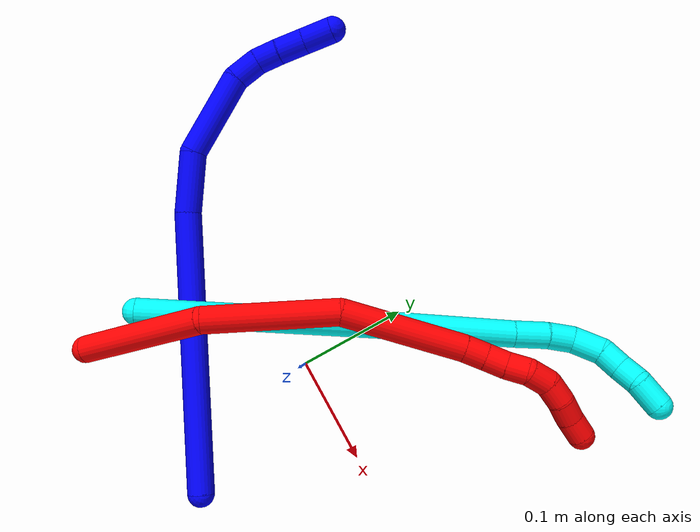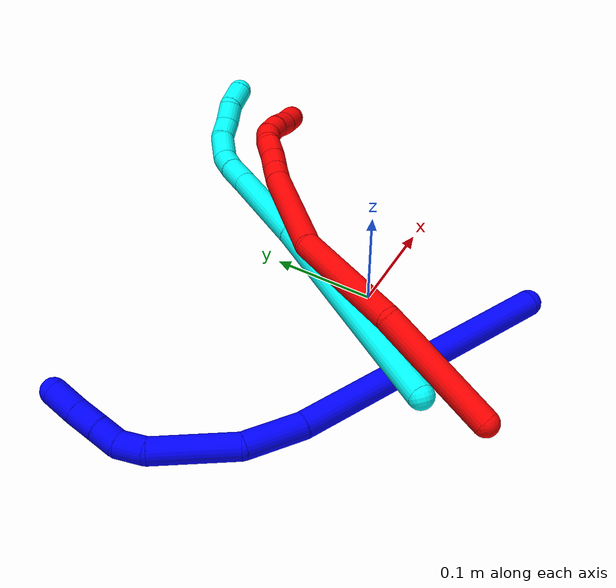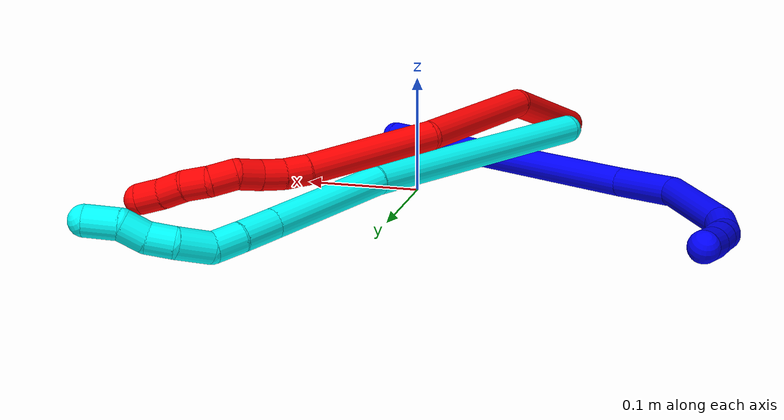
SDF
<sdf version="1.7">
 <world name="default">
  <plugin name="TubeGeneratorPlugin" filename="libtube_generator_plugin.so"/>
  <model name="photoneo_s_sensor">
   <static>1</static>
   <pose>0 0 2 1.57079 1.57079 3.14159</pose>
   <link name="link">
    <inertial><mass>0.1</mass></inertial>
    <sensor name="sensor" type="depth">
     <update_rate>30</update_rate>
     <camera>
      <horizontal_fov>1.22</horizontal_fov>
      <image><width>1920</width><height>1200</height><format>B8G8R8</format></image>
      <clip><near>0.1</near><far>4</far></clip>
      <depth_camera><output>points</output></depth_camera>
     </camera>
     <plugin name="camera_plugin" filename="libgazebo_ros_depth_camera.so">
      <baseline>0.2</baseline>
      <alwaysOn>1</alwaysOn>
      <updateRate>0.0</updateRate>
      <cameraName>camera_ir</cameraName>
      <imageTopicName>/camera/color/image_raw</imageTopicName>
      <cameraInfoTopicName>/camera/color/camera_info</cameraInfoTopicName>
      <depthImageTopicName>/camera/depth/image_raw</depthImageTopicName>
      <depthImageCameraInfoTopicName>/camera/depth/camera_info</depthImageCameraInfoTopicName>
      <pointCloudTopicName>/camera/depth/points</pointCloudTopicName>
      <frameName>fr_optical</frameName>
      <pointCloudCutoff>0.1</pointCloudCutoff>
      <pointCloudCutoffMax>2.0</pointCloudCutoffMax>
      <distortionK1>0</distortionK1>
      <distortionK2>0</distortionK2>
      <distortionK3>0</distortionK3>
      <distortionT1>0</distortionT1>
      <distortionT2>0</distortionT2>
      <CxPrime>0</CxPrime>
      <Cx>0</Cx>
      <Cy>0</Cy>
      <focalLength>0</focalLength>
      <hackBaseline>0</hackBaseline>
     </plugin>
    </sensor>
   </link>
  </model>
  <gravity>0 0 -9.8</gravity>
  <magnetic_field>6e-06 2.3e-05 -4.2e-05</magnetic_field>
  <atmosphere type="adiabatic"/>
  <physics name="default_physics" default="0" type="ode">
   <max_step_size>0.003</max_step_size>
   <real_time_factor>1</real_time_factor>
   <real_time_update_rate>1000</real_time_update_rate>
   <max_contacts>10000</max_contacts>
   <ode>
    <solver>
     <type>quick</type>
     <iters>100</iters>
     <sor>1.3</sor>
     <use_dynamic_moi_rescaling>0</use_dynamic_moi_rescaling>
    </solver>
    <constraints>
     <contact_max_correcting_vel>0</contact_max_correcting_vel>
     <contact_surface_layer>0.001</contact_surface_layer>
     <cfm>0</cfm>
     <erp>0.2</erp>
    </constraints>
   </ode>
  </physics>
  <scene><ambient>0.4 0.4 0.4 1</ambient><background>0.7 0.7 0.7 1</background><shadows>0</shadows></scene>
  <audio><device>default</device></audio>
  <spherical_coordinates>
   <surface_model>EARTH_WGS84</surface_model>
   <latitude_deg>0</latitude_deg>
   <longitude_deg>0</longitude_deg>
   <elevation>0</elevation>
   <heading_deg>0</heading_deg>
  </spherical_coordinates>
  <model name="bin">
   <static>1</static>
   <link name="bottom">
    <collision name="collision-bottom">
     <pose>0 0 -0.01 0 -0 0</pose>
     <geometry><box><size>0.8 0.6 0.02</size></box></geometry>
     <surface>
      <friction><ode><mu>100</mu><mu2>100</mu2></ode></friction>
      <contact><collide_bitmask>65535</collide_bitmask></contact>
     </surface>
    </collision>
   </link>
   <link name="west_wall">
    <collision name="collision-west_wall">
     <pose>-0.41 0 0.1 0 -0 0</pose>
     <geometry><box><size>0.02 0.6 0.2</size></box></geometry>
     <surface>
      <friction><ode><mu>100</mu><mu2>100</mu2></ode></friction>
      <contact><collide_bitmask>65535</collide_bitmask></contact>
     </surface>
    </collision>
   </link>
   <link name="east_wall">
    <collision name="collision-east_wall">
     <pose>0.41 0 0.1 0 -0 0</pose>
     <geometry><box><size>0.02 0.6 0.2</size></box></geometry>
     <surface>
      <friction><ode><mu>100</mu><mu2>100</mu2></ode></friction>
      <contact><collide_bitmask>65535</collide_bitmask></contact>
     </surface>
    </collision>
   </link>
   <link name="south_wall">
    <collision name="collision-south_wall">
     <pose>0 -0.31 0.1 0 -0 0</pose>
     <geometry><box><size>0.8 0.02 0.2</size></box></geometry>
     <surface>
      <friction><ode><mu>100</mu><mu2>100</mu2></ode></friction>
      <contact><collide_bitmask>65535</collide_bitmask></contact>
     </surface>
    </collision>
   </link>
   <link name="north_wall">
    <collision name="collision-north_wall">
     <pose>0 0.31 0.1 0 -0 0</pose>
     <geometry><box><size>0.8 0.02 0.2</size></box></geometry>
     <surface>
      <friction><ode><mu>100</mu><mu2>100</mu2></ode></friction>
      <contact><collide_bitmask>65535</collide_bitmask></contact>
     </surface>
    </collision>
   </link>
  </model>
  <model name="1">
   <static>0</static>
   <link name="1">
    <collision name="collision-cylinder-e_1_1_4">
     <pose>-0.102089 0.063908 0.048092 -0.92568 -0.90623 0.476684</pose>
     <geometry><cylinder><radius>0.0125</radius><length>0.259379</length></cylinder></geometry>
     <surface>
      <friction><ode><mu>1.16</mu><mu2>1.16</mu2><slip1>0</slip1><slip2>0</slip2></ode></friction>
      <contact><ode><kp>1e+06</kp><kd>1</kd><max_vel>0</max_vel><min_depth>0.001</min_depth></ode></contact>
     </surface>
    </collision>
    <visual name="visual-cylinder-e_1_1_4">
     <pose>-0.102089 0.063908 0.048092 -0.92568 -0.90623 0.476684</pose>
     <geometry><cylinder><radius>0.0125</radius><length>0.259379</length></cylinder></geometry>
     <material><ambient>0 0 1 1</ambient></material>
    </visual>
    <collision name="collision-cylinder-e_2_4_5">
     <pose>-0.223655 0.143493 0.109756 -0.857259 -0.754084 0.358029</pose>
     <geometry><cylinder><radius>0.0125</radius><length>0.056896</length></cylinder></geometry>
     <surface>
      <friction><ode><mu>1.16</mu><mu2>1.16</mu2><slip1>0</slip1><slip2>0</slip2></ode></friction>
      <contact><ode><kp>1e+06</kp><kd>1</kd><max_vel>0</max_vel><min_depth>0.001</min_depth></ode></contact>
     </surface>
    </collision>
    <visual name="visual-cylinder-e_2_4_5">
     <pose>-0.223655 0.143493 0.109756 -0.857259 -0.754084 0.358029</pose>
     <geometry><cylinder><radius>0.0125</radius><length>0.056896</length></cylinder></geometry>
     <material><ambient>0 0 1 1</ambient></material>
    </visual>
    <collision name="collision-cylinder-e_3_5_6">
     <pose>-0.256895 0.191339 0.142877 -1.02474 -0.350524 0.198549</pose>
     <geometry><cylinder><radius>0.0125</radius><length>0.080161</length></cylinder></geometry>
     <surface>
      <friction><ode><mu>1.16</mu><mu2>1.16</mu2><slip1>0</slip1><slip2>0</slip2></ode></friction>
      <contact><ode><kp>1e+06</kp><kd>1</kd><max_vel>0</max_vel><min_depth>0.001</min_depth></ode></contact>
     </surface>
    </collision>
    <visual name="visual-cylinder-e_3_5_6">
     <pose>-0.256895 0.191339 0.142877 -1.02474 -0.350524 0.198549</pose>
     <geometry><cylinder><radius>0.0125</radius><length>0.080161</length></cylinder></geometry>
     <material><ambient>0 0 1 1</ambient></material>
    </visual>
    <collision name="collision-cylinder-e_4_6_7">
     <pose>-0.270399 0.235191 0.168663 -1.08048 0.019515 -0.011704</pose>
     <geometry><cylinder><radius>0.0125</radius><length>0.026491</length></cylinder></geometry>
     <surface>
      <friction><ode><mu>1.16</mu><mu2>1.16</mu2><slip1>0</slip1><slip2>0</slip2></ode></friction>
      <contact><ode><kp>1e+06</kp><kd>1</kd><max_vel>0</max_vel><min_depth>0.001</min_depth></ode></contact>
     </surface>
    </collision>
    <visual name="visual-cylinder-e_4_6_7">
     <pose>-0.270399 0.235191 0.168663 -1.08048 0.019515 -0.011704</pose>
     <geometry><cylinder><radius>0.0125</radius><length>0.026491</length></cylinder></geometry>
     <material><ambient>0 0 1 1</ambient></material>
    </visual>
    <collision name="collision-cylinder-e_5_7_8">
     <pose>-0.266343 0.254842 0.1819 -0.849878 0.343824 -0.156812</pose>
     <geometry><cylinder><radius>0.0125</radius><length>0.022531</length></cylinder></geometry>
     <surface>
      <friction><ode><mu>1.16</mu><mu2>1.16</mu2><slip1>0</slip1><slip2>0</slip2></ode></friction>
      <contact><ode><kp>1e+06</kp><kd>1</kd><max_vel>0</max_vel><min_depth>0.001</min_depth></ode></contact>
     </surface>
    </collision>
    <visual name="visual-cylinder-e_5_7_8">
     <pose>-0.266343 0.254842 0.1819 -0.849878 0.343824 -0.156812</pose>
     <geometry><cylinder><radius>0.0125</radius><length>0.022531</length></cylinder></geometry>
     <material><ambient>0 0 1 1</ambient></material>
    </visual>
    <collision name="collision-cylinder-e_6_8_9">
     <pose>-0.257905 0.272498 0.196276 -0.920143 0.364105 -0.181944</pose>
     <geometry><cylinder><radius>0.0125</radius><length>0.026062</length></cylinder></geometry>
     <surface>
      <friction><ode><mu>1.16</mu><mu2>1.16</mu2><slip1>0</slip1><slip2>0</slip2></ode></friction>
      <contact><ode><kp>1e+06</kp><kd>1</kd><max_vel>0</max_vel><min_depth>0.001</min_depth></ode></contact>
     </surface>
    </collision>
    <visual name="visual-cylinder-e_6_8_9">
     <pose>-0.257905 0.272498 0.196276 -0.920143 0.364105 -0.181944</pose>
     <geometry><cylinder><radius>0.0125</radius><length>0.026062</length></cylinder></geometry>
     <material><ambient>0 0 1 1</ambient></material>
    </visual>
    <collision name="collision-cylinder-e_7_9_2">
     <pose>-0.247871 0.29199 0.21246 -0.838826 0.388506 -0.174987</pose>
     <geometry><cylinder><radius>0.0125</radius><length>0.02848</length></cylinder></geometry>
     <surface>
      <friction><ode><mu>1.16</mu><mu2>1.16</mu2><slip1>0</slip1><slip2>0</slip2></ode></friction>
      <contact><ode><kp>1e+06</kp><kd>1</kd><max_vel>0</max_vel><min_depth>0.001</min_depth></ode></contact>
     </surface>
    </collision>
    <visual name="visual-cylinder-e_7_9_2">
     <pose>-0.247871 0.29199 0.21246 -0.838826 0.388506 -0.174987</pose>
     <geometry><cylinder><radius>0.0125</radius><length>0.02848</length></cylinder></geometry>
     <material><ambient>0 0 1 1</ambient></material>
    </visual>
    <collision name="collision-sphere-2">
     <pose>-0.242477 0.301793 0.221267 0 -0 0</pose>
     <geometry><sphere><radius>0.0125</radius></sphere></geometry>
     <surface>
      <friction><ode><mu>1.16</mu><mu2>1.16</mu2><slip1>0</slip1><slip2>0</slip2></ode></friction>
      <contact><ode><kp>1e+06</kp><kd>1</kd><max_vel>0</max_vel><min_depth>0.001</min_depth></ode></contact>
     </surface>
    </collision>
    <visual name="visual-sphere-2">
     <pose>-0.242477 0.301793 0.221267 0 -0 0</pose>
     <geometry><sphere><radius>0.0125</radius></sphere></geometry>
     <material><ambient>0 0 1 1</ambient></material>
    </visual>
    <collision name="collision-sphere-9">
     <pose>-0.253265 0.282187 0.203652 0 -0 0</pose>
     <geometry><sphere><radius>0.0125</radius></sphere></geometry>
     <surface>
      <friction><ode><mu>1.16</mu><mu2>1.16</mu2><slip1>0</slip1><slip2>0</slip2></ode></friction>
      <contact><ode><kp>1e+06</kp><kd>1</kd><max_vel>0</max_vel><min_depth>0.001</min_depth></ode></contact>
     </surface>
    </collision>
    <visual name="visual-sphere-9">
     <pose>-0.253265 0.282187 0.203652 0 -0 0</pose>
     <geometry><sphere><radius>0.0125</radius></sphere></geometry>
     <material><ambient>0 0 1 1</ambient></material>
    </visual>
    <collision name="collision-sphere-4">
     <pose>-0.204179 0.127815 0.096185 0 -0 0</pose>
     <geometry><sphere><radius>0.0125</radius></sphere></geometry>
     <surface>
      <friction><ode><mu>1.16</mu><mu2>1.16</mu2><slip1>0</slip1><slip2>0</slip2></ode></friction>
      <contact><ode><kp>1e+06</kp><kd>1</kd><max_vel>0</max_vel><min_depth>0.001</min_depth></ode></contact>
     </surface>
    </collision>
    <visual name="visual-sphere-4">
     <pose>-0.204179 0.127815 0.096185 0 -0 0</pose>
     <geometry><sphere><radius>0.0125</radius></sphere></geometry>
     <material><ambient>0 0 1 1</ambient></material>
    </visual>
    <collision name="collision-sphere-1">
     <geometry><sphere><radius>0.0125</radius></sphere></geometry>
     <surface>
      <friction><ode><mu>1.16</mu><mu2>1.16</mu2><slip1>0</slip1><slip2>0</slip2></ode></friction>
      <contact><ode><kp>1e+06</kp><kd>1</kd><max_vel>0</max_vel><min_depth>0.001</min_depth></ode></contact>
     </surface>
    </collision>
    <visual name="visual-sphere-1">
     <geometry><sphere><radius>0.0125</radius></sphere></geometry>
     <material><ambient>0 0 1 1</ambient></material>
    </visual>
    <collision name="collision-sphere-8">
     <pose>-0.262546 0.262809 0.188901 0 -0 0</pose>
     <geometry><sphere><radius>0.0125</radius></sphere></geometry>
     <surface>
      <friction><ode><mu>1.16</mu><mu2>1.16</mu2><slip1>0</slip1><slip2>0</slip2></ode></friction>
      <contact><ode><kp>1e+06</kp><kd>1</kd><max_vel>0</max_vel><min_depth>0.001</min_depth></ode></contact>
     </surface>
    </collision>
    <visual name="visual-sphere-8">
     <pose>-0.262546 0.262809 0.188901 0 -0 0</pose>
     <geometry><sphere><radius>0.0125</radius></sphere></geometry>
     <material><ambient>0 0 1 1</ambient></material>
    </visual>
    <collision name="collision-sphere-5">
     <pose>-0.243131 0.15917 0.123328 0 -0 0</pose>
     <geometry><sphere><radius>0.0125</radius></sphere></geometry>
     <surface>
      <friction><ode><mu>1.16</mu><mu2>1.16</mu2><slip1>0</slip1><slip2>0</slip2></ode></friction>
      <contact><ode><kp>1e+06</kp><kd>1</kd><max_vel>0</max_vel><min_depth>0.001</min_depth></ode></contact>
     </surface>
    </collision>
    <visual name="visual-sphere-5">
     <pose>-0.243131 0.15917 0.123328 0 -0 0</pose>
     <geometry><sphere><radius>0.0125</radius></sphere></geometry>
     <material><ambient>0 0 1 1</ambient></material>
    </visual>
    <collision name="collision-sphere-6">
     <pose>-0.270658 0.223508 0.162426 0 -0 0</pose>
     <geometry><sphere><radius>0.0125</radius></sphere></geometry>
     <surface>
      <friction><ode><mu>1.16</mu><mu2>1.16</mu2><slip1>0</slip1><slip2>0</slip2></ode></friction>
      <contact><ode><kp>1e+06</kp><kd>1</kd><max_vel>0</max_vel><min_depth>0.001</min_depth></ode></contact>
     </surface>
    </collision>
    <visual name="visual-sphere-6">
     <pose>-0.270658 0.223508 0.162426 0 -0 0</pose>
     <geometry><sphere><radius>0.0125</radius></sphere></geometry>
     <material><ambient>0 0 1 1</ambient></material>
    </visual>
    <collision name="collision-sphere-7">
     <pose>-0.270141 0.246874 0.174899 0 -0 0</pose>
     <geometry><sphere><radius>0.0125</radius></sphere></geometry>
     <surface>
      <friction><ode><mu>1.16</mu><mu2>1.16</mu2><slip1>0</slip1><slip2>0</slip2></ode></friction>
      <contact><ode><kp>1e+06</kp><kd>1</kd><max_vel>0</max_vel><min_depth>0.001</min_depth></ode></contact>
     </surface>
    </collision>
    <visual name="visual-sphere-7">
     <pose>-0.270141 0.246874 0.174899 0 -0 0</pose>
     <geometry><sphere><radius>0.0125</radius></sphere></geometry>
     <material><ambient>0 0 1 1</ambient></material>
    </visual>
    <inertial>
     <pose>-0.173486 0.134937 0.099809 0 -0 0</pose>
     <mass>0.5</mass>
     <inertia>
      <ixx>0.001273</ixx>
      <ixy>0</ixy>
      <ixz>0</ixz>
      <iyy>0.001701</iyy>
      <iyz>0</iyz>
      <izz>0.000419</izz>
     </inertia>
    </inertial>
   </link>
   <pose>0.058295 -0.140206 0.011499 -0.549611 -0.074578 0.214473</pose>
  </model>
  <model name="2">
   <static>0</static>
   <link name="2">
    <collision name="collision-cylinder-e_1_1_4">
     <pose>-0.032531 0.037753 -0.034965 -2.31787 -0.563757 1.1708</pose>
     <geometry><cylinder><radius>0.0125</radius><length>0.121756</length></cylinder></geometry>
     <surface>
      <friction><ode><mu>1.16</mu><mu2>1.16</mu2><slip1>0</slip1><slip2>0</slip2></ode></friction>
      <contact><ode><kp>1e+06</kp><kd>1</kd><max_vel>0</max_vel><min_depth>0.001</min_depth></ode></contact>
     </surface>
    </collision>
    <visual name="visual-cylinder-e_1_1_4">
     <pose>-0.032531 0.037753 -0.034965 -2.31787 -0.563757 1.1708</pose>
     <geometry><cylinder><radius>0.0125</radius><length>0.121756</length></cylinder></geometry>
     <material><ambient>1 0 0 1</ambient></material>
    </visual>
    <collision name="collision-cylinder-e_2_4_5">
     <pose>-0.075642 0.109069 -0.119619 -2.54753 -0.174649 0.557162</pose>
     <geometry><cylinder><radius>0.0125</radius><length>0.121777</length></cylinder></geometry>
     <surface>
      <friction><ode><mu>1.16</mu><mu2>1.16</mu2><slip1>0</slip1><slip2>0</slip2></ode></friction>
      <contact><ode><kp>1e+06</kp><kd>1</kd><max_vel>0</max_vel><min_depth>0.001</min_depth></ode></contact>
     </surface>
    </collision>
    <visual name="visual-cylinder-e_2_4_5">
     <pose>-0.075642 0.109069 -0.119619 -2.54753 -0.174649 0.557162</pose>
     <geometry><cylinder><radius>0.0125</radius><length>0.121777</length></cylinder></geometry>
     <material><ambient>1 0 0 1</ambient></material>
    </visual>
    <collision name="collision-cylinder-e_3_5_6">
     <pose>-0.078771 0.181825 -0.210375 -2.37955 0.130513 -0.323412</pose>
     <geometry><cylinder><radius>0.0125</radius><length>0.11451</length></cylinder></geometry>
     <surface>
      <friction><ode><mu>1.16</mu><mu2>1.16</mu2><slip1>0</slip1><slip2>0</slip2></ode></friction>
      <contact><ode><kp>1e+06</kp><kd>1</kd><max_vel>0</max_vel><min_depth>0.001</min_depth></ode></contact>
     </surface>
    </collision>
    <visual name="visual-cylinder-e_3_5_6">
     <pose>-0.078771 0.181825 -0.210375 -2.37955 0.130513 -0.323412</pose>
     <geometry><cylinder><radius>0.0125</radius><length>0.11451</length></cylinder></geometry>
     <material><ambient>1 0 0 1</ambient></material>
    </visual>
    <collision name="collision-cylinder-e_4_6_7">
     <pose>-0.06958 0.228707 -0.257966 -2.27428 0.170857 -0.365747</pose>
     <geometry><cylinder><radius>0.0125</radius><length>0.020465</length></cylinder></geometry>
     <surface>
      <friction><ode><mu>1.16</mu><mu2>1.16</mu2><slip1>0</slip1><slip2>0</slip2></ode></friction>
      <contact><ode><kp>1e+06</kp><kd>1</kd><max_vel>0</max_vel><min_depth>0.001</min_depth></ode></contact>
     </surface>
    </collision>
    <visual name="visual-cylinder-e_4_6_7">
     <pose>-0.06958 0.228707 -0.257966 -2.27428 0.170857 -0.365747</pose>
     <geometry><cylinder><radius>0.0125</radius><length>0.020465</length></cylinder></geometry>
     <material><ambient>1 0 0 1</ambient></material>
    </visual>
    <collision name="collision-cylinder-e_5_7_8">
     <pose>-0.066984 0.244713 -0.269978 -2.15421 0.085712 -0.159035</pose>
     <geometry><cylinder><radius>0.0125</radius><length>0.020003</length></cylinder></geometry>
     <surface>
      <friction><ode><mu>1.16</mu><mu2>1.16</mu2><slip1>0</slip1><slip2>0</slip2></ode></friction>
      <contact><ode><kp>1e+06</kp><kd>1</kd><max_vel>0</max_vel><min_depth>0.001</min_depth></ode></contact>
     </surface>
    </collision>
    <visual name="visual-cylinder-e_5_7_8">
     <pose>-0.066984 0.244713 -0.269978 -2.15421 0.085712 -0.159035</pose>
     <geometry><cylinder><radius>0.0125</radius><length>0.020003</length></cylinder></geometry>
     <material><ambient>1 0 0 1</ambient></material>
    </visual>
    <collision name="collision-cylinder-e_6_8_9">
     <pose>-0.066772 0.261408 -0.280942 -2.14964 -0.064235 0.118616</pose>
     <geometry><cylinder><radius>0.0125</radius><length>0.02006</length></cylinder></geometry>
     <surface>
      <friction><ode><mu>1.16</mu><mu2>1.16</mu2><slip1>0</slip1><slip2>0</slip2></ode></friction>
      <contact><ode><kp>1e+06</kp><kd>1</kd><max_vel>0</max_vel><min_depth>0.001</min_depth></ode></contact>
     </surface>
    </collision>
    <visual name="visual-cylinder-e_6_8_9">
     <pose>-0.066772 0.261408 -0.280942 -2.14964 -0.064235 0.118616</pose>
     <geometry><cylinder><radius>0.0125</radius><length>0.02006</length></cylinder></geometry>
     <material><ambient>1 0 0 1</ambient></material>
    </visual>
    <collision name="collision-cylinder-e_7_9_10">
     <pose>-0.063623 0.277172 -0.292967 -2.29626 0.366839 -0.782365</pose>
     <geometry><cylinder><radius>0.0125</radius><length>0.021148</length></cylinder></geometry>
     <surface>
      <friction><ode><mu>1.16</mu><mu2>1.16</mu2><slip1>0</slip1><slip2>0</slip2></ode></friction>
      <contact><ode><kp>1e+06</kp><kd>1</kd><max_vel>0</max_vel><min_depth>0.001</min_depth></ode></contact>
     </surface>
    </collision>
    <visual name="visual-cylinder-e_7_9_10">
     <pose>-0.063623 0.277172 -0.292967 -2.29626 0.366839 -0.782365</pose>
     <geometry><cylinder><radius>0.0125</radius><length>0.021148</length></cylinder></geometry>
     <material><ambient>1 0 0 1</ambient></material>
    </visual>
    <collision name="collision-cylinder-e_8_10_11">
     <pose>-0.053421 0.291705 -0.302774 -1.99849 0.684342 -1.01151</pose>
     <geometry><cylinder><radius>0.0125</radius><length>0.020277</length></cylinder></geometry>
     <surface>
      <friction><ode><mu>1.16</mu><mu2>1.16</mu2><slip1>0</slip1><slip2>0</slip2></ode></friction>
      <contact><ode><kp>1e+06</kp><kd>1</kd><max_vel>0</max_vel><min_depth>0.001</min_depth></ode></contact>
     </surface>
    </collision>
    <visual name="visual-cylinder-e_8_10_11">
     <pose>-0.053421 0.291705 -0.302774 -1.99849 0.684342 -1.01151</pose>
     <geometry><cylinder><radius>0.0125</radius><length>0.020277</length></cylinder></geometry>
     <material><ambient>1 0 0 1</ambient></material>
    </visual>
    <collision name="collision-cylinder-e_9_11_12">
     <pose>-0.039321 0.304381 -0.309244 -2.09712 0.877241 -1.36772</pose>
     <geometry><cylinder><radius>0.0125</radius><length>0.020003</length></cylinder></geometry>
     <surface>
      <friction><ode><mu>1.16</mu><mu2>1.16</mu2><slip1>0</slip1><slip2>0</slip2></ode></friction>
      <contact><ode><kp>1e+06</kp><kd>1</kd><max_vel>0</max_vel><min_depth>0.001</min_depth></ode></contact>
     </surface>
    </collision>
    <visual name="visual-cylinder-e_9_11_12">
     <pose>-0.039321 0.304381 -0.309244 -2.09712 0.877241 -1.36772</pose>
     <geometry><cylinder><radius>0.0125</radius><length>0.020003</length></cylinder></geometry>
     <material><ambient>1 0 0 1</ambient></material>
    </visual>
    <collision name="collision-cylinder-e_10_12_2">
     <pose>-0.024869 0.316451 -0.31585 -2.04939 0.742335 -1.1392</pose>
     <geometry><cylinder><radius>0.0125</radius><length>0.020002</length></cylinder></geometry>
     <surface>
      <friction><ode><mu>1.16</mu><mu2>1.16</mu2><slip1>0</slip1><slip2>0</slip2></ode></friction>
      <contact><ode><kp>1e+06</kp><kd>1</kd><max_vel>0</max_vel><min_depth>0.001</min_depth></ode></contact>
     </surface>
    </collision>
    <visual name="visual-cylinder-e_10_12_2">
     <pose>-0.024869 0.316451 -0.31585 -2.04939 0.742335 -1.1392</pose>
     <geometry><cylinder><radius>0.0125</radius><length>0.020002</length></cylinder></geometry>
     <material><ambient>1 0 0 1</ambient></material>
    </visual>
    <collision name="collision-sphere-2">
     <pose>-0.018108 0.322993 -0.319244 0 -0 0</pose>
     <geometry><sphere><radius>0.0125</radius></sphere></geometry>
     <surface>
      <friction><ode><mu>1.16</mu><mu2>1.16</mu2><slip1>0</slip1><slip2>0</slip2></ode></friction>
      <contact><ode><kp>1e+06</kp><kd>1</kd><max_vel>0</max_vel><min_depth>0.001</min_depth></ode></contact>
     </surface>
    </collision>
    <visual name="visual-sphere-2">
     <pose>-0.018108 0.322993 -0.319244 0 -0 0</pose>
     <geometry><sphere><radius>0.0125</radius></sphere></geometry>
     <material><ambient>1 0 0 1</ambient></material>
    </visual>
    <collision name="collision-sphere-12">
     <pose>-0.03163 0.30991 -0.312456 0 -0 0</pose>
     <geometry><sphere><radius>0.0125</radius></sphere></geometry>
     <surface>
      <friction><ode><mu>1.16</mu><mu2>1.16</mu2><slip1>0</slip1><slip2>0</slip2></ode></friction>
      <contact><ode><kp>1e+06</kp><kd>1</kd><max_vel>0</max_vel><min_depth>0.001</min_depth></ode></contact>
     </surface>
    </collision>
    <visual name="visual-sphere-12">
     <pose>-0.03163 0.30991 -0.312456 0 -0 0</pose>
     <geometry><sphere><radius>0.0125</radius></sphere></geometry>
     <material><ambient>1 0 0 1</ambient></material>
    </visual>
    <collision name="collision-sphere-11">
     <pose>-0.047012 0.298853 -0.306032 0 -0 0</pose>
     <geometry><sphere><radius>0.0125</radius></sphere></geometry>
     <surface>
      <friction><ode><mu>1.16</mu><mu2>1.16</mu2><slip1>0</slip1><slip2>0</slip2></ode></friction>
      <contact><ode><kp>1e+06</kp><kd>1</kd><max_vel>0</max_vel><min_depth>0.001</min_depth></ode></contact>
     </surface>
    </collision>
    <visual name="visual-sphere-11">
     <pose>-0.047012 0.298853 -0.306032 0 -0 0</pose>
     <geometry><sphere><radius>0.0125</radius></sphere></geometry>
     <material><ambient>1 0 0 1</ambient></material>
    </visual>
    <collision name="collision-sphere-10">
     <pose>-0.05983 0.284557 -0.299516 0 -0 0</pose>
     <geometry><sphere><radius>0.0125</radius></sphere></geometry>
     <surface>
      <friction><ode><mu>1.16</mu><mu2>1.16</mu2><slip1>0</slip1><slip2>0</slip2></ode></friction>
      <contact><ode><kp>1e+06</kp><kd>1</kd><max_vel>0</max_vel><min_depth>0.001</min_depth></ode></contact>
     </surface>
    </collision>
    <visual name="visual-sphere-10">
     <pose>-0.05983 0.284557 -0.299516 0 -0 0</pose>
     <geometry><sphere><radius>0.0125</radius></sphere></geometry>
     <material><ambient>1 0 0 1</ambient></material>
    </visual>
    <collision name="collision-sphere-9">
     <pose>-0.067415 0.269787 -0.286418 0 -0 0</pose>
     <geometry><sphere><radius>0.0125</radius></sphere></geometry>
     <surface>
      <friction><ode><mu>1.16</mu><mu2>1.16</mu2><slip1>0</slip1><slip2>0</slip2></ode></friction>
      <contact><ode><kp>1e+06</kp><kd>1</kd><max_vel>0</max_vel><min_depth>0.001</min_depth></ode></contact>
     </surface>
    </collision>
    <visual name="visual-sphere-9">
     <pose>-0.067415 0.269787 -0.286418 0 -0 0</pose>
     <geometry><sphere><radius>0.0125</radius></sphere></geometry>
     <material><ambient>1 0 0 1</ambient></material>
    </visual>
    <collision name="collision-sphere-4">
     <pose>-0.065062 0.075506 -0.06993 0 -0 0</pose>
     <geometry><sphere><radius>0.0125</radius></sphere></geometry>
     <surface>
      <friction><ode><mu>1.16</mu><mu2>1.16</mu2><slip1>0</slip1><slip2>0</slip2></ode></friction>
      <contact><ode><kp>1e+06</kp><kd>1</kd><max_vel>0</max_vel><min_depth>0.001</min_depth></ode></contact>
     </surface>
    </collision>
    <visual name="visual-sphere-4">
     <pose>-0.065062 0.075506 -0.06993 0 -0 0</pose>
     <geometry><sphere><radius>0.0125</radius></sphere></geometry>
     <material><ambient>1 0 0 1</ambient></material>
    </visual>
    <collision name="collision-sphere-1">
     <geometry><sphere><radius>0.0125</radius></sphere></geometry>
     <surface>
      <friction><ode><mu>1.16</mu><mu2>1.16</mu2><slip1>0</slip1><slip2>0</slip2></ode></friction>
      <contact><ode><kp>1e+06</kp><kd>1</kd><max_vel>0</max_vel><min_depth>0.001</min_depth></ode></contact>
     </surface>
    </collision>
    <visual name="visual-sphere-1">
     <geometry><sphere><radius>0.0125</radius></sphere></geometry>
     <material><ambient>1 0 0 1</ambient></material>
    </visual>
    <collision name="collision-sphere-8">
     <pose>-0.066128 0.253029 -0.275467 0 -0 0</pose>
     <geometry><sphere><radius>0.0125</radius></sphere></geometry>
     <surface>
      <friction><ode><mu>1.16</mu><mu2>1.16</mu2><slip1>0</slip1><slip2>0</slip2></ode></friction>
      <contact><ode><kp>1e+06</kp><kd>1</kd><max_vel>0</max_vel><min_depth>0.001</min_depth></ode></contact>
     </surface>
    </collision>
    <visual name="visual-sphere-8">
     <pose>-0.066128 0.253029 -0.275467 0 -0 0</pose>
     <geometry><sphere><radius>0.0125</radius></sphere></geometry>
     <material><ambient>1 0 0 1</ambient></material>
    </visual>
    <collision name="collision-sphere-5">
     <pose>-0.086222 0.142632 -0.169308 0 -0 0</pose>
     <geometry><sphere><radius>0.0125</radius></sphere></geometry>
     <surface>
      <friction><ode><mu>1.16</mu><mu2>1.16</mu2><slip1>0</slip1><slip2>0</slip2></ode></friction>
      <contact><ode><kp>1e+06</kp><kd>1</kd><max_vel>0</max_vel><min_depth>0.001</min_depth></ode></contact>
     </surface>
    </collision>
    <visual name="visual-sphere-5">
     <pose>-0.086222 0.142632 -0.169308 0 -0 0</pose>
     <geometry><sphere><radius>0.0125</radius></sphere></geometry>
     <material><ambient>1 0 0 1</ambient></material>
    </visual>
    <collision name="collision-sphere-6">
     <pose>-0.07132 0.221017 -0.251443 0 -0 0</pose>
     <geometry><sphere><radius>0.0125</radius></sphere></geometry>
     <surface>
      <friction><ode><mu>1.16</mu><mu2>1.16</mu2><slip1>0</slip1><slip2>0</slip2></ode></friction>
      <contact><ode><kp>1e+06</kp><kd>1</kd><max_vel>0</max_vel><min_depth>0.001</min_depth></ode></contact>
     </surface>
    </collision>
    <visual name="visual-sphere-6">
     <pose>-0.07132 0.221017 -0.251443 0 -0 0</pose>
     <geometry><sphere><radius>0.0125</radius></sphere></geometry>
     <material><ambient>1 0 0 1</ambient></material>
    </visual>
    <collision name="collision-sphere-7">
     <pose>-0.06784 0.236396 -0.264488 0 -0 0</pose>
     <geometry><sphere><radius>0.0125</radius></sphere></geometry>
     <surface>
      <friction><ode><mu>1.16</mu><mu2>1.16</mu2><slip1>0</slip1><slip2>0</slip2></ode></friction>
      <contact><ode><kp>1e+06</kp><kd>1</kd><max_vel>0</max_vel><min_depth>0.001</min_depth></ode></contact>
     </surface>
    </collision>
    <visual name="visual-sphere-7">
     <pose>-0.06784 0.236396 -0.264488 0 -0 0</pose>
     <geometry><sphere><radius>0.0125</radius></sphere></geometry>
     <material><ambient>1 0 0 1</ambient></material>
    </visual>
    <inertial>
     <pose>-0.060017 0.155427 -0.168136 0 -0 0</pose>
     <mass>0.5</mass>
     <inertia><ixx>0.000464</ixx><ixy>0</ixy><ixz>0</ixz><iyy>9e-06</iyy><iyz>0</iyz><izz>-0.000214</izz></inertia>
    </inertial>
   </link>
   <pose>-0.10779 -0.166501 0.027409 0.761792 0.690103 -0.716862</pose>
  </model>
  <model name="3">
   <static>0</static>
   <link name="3">
    <collision name="collision-cylinder-e_1_1_4">
     <pose>0.056708 0.064792 0.080881 -0.675396 0.50069 -0.179104</pose>
     <geometry><cylinder><radius>0.0125</radius><length>0.236266</length></cylinder></geometry>
     <surface>
      <friction><ode><mu>1.16</mu><mu2>1.16</mu2><slip1>0</slip1><slip2>0</slip2></ode></friction>
      <contact><ode><kp>1e+06</kp><kd>1</kd><max_vel>0</max_vel><min_depth>0.001</min_depth></ode></contact>
     </surface>
    </collision>
    <visual name="visual-cylinder-e_1_1_4">
     <pose>0.056708 0.064792 0.080881 -0.675396 0.50069 -0.179104</pose>
     <geometry><cylinder><radius>0.0125</radius><length>0.236266</length></cylinder></geometry>
     <material><ambient>0.003922 1 0.996078 1</ambient></material>
    </visual>
    <collision name="collision-cylinder-e_2_4_5">
     <pose>0.143251 0.161134 0.193762 -0.77832 0.586098 -0.246217</pose>
     <geometry><cylinder><radius>0.0125</radius><length>0.107882</length></cylinder></geometry>
     <surface>
      <friction><ode><mu>1.16</mu><mu2>1.16</mu2><slip1>0</slip1><slip2>0</slip2></ode></friction>
      <contact><ode><kp>1e+06</kp><kd>1</kd><max_vel>0</max_vel><min_depth>0.001</min_depth></ode></contact>
     </surface>
    </collision>
    <visual name="visual-cylinder-e_2_4_5">
     <pose>0.143251 0.161134 0.193762 -0.77832 0.586098 -0.246217</pose>
     <geometry><cylinder><radius>0.0125</radius><length>0.107882</length></cylinder></geometry>
     <material><ambient>0.003922 1 0.996078 1</ambient></material>
    </visual>
    <collision name="collision-cylinder-e_3_5_6">
     <pose>0.181476 0.202271 0.235491 -0.778046 0.550881 -0.230675</pose>
     <geometry><cylinder><radius>0.0125</radius><length>0.032057</length></cylinder></geometry>
     <surface>
      <friction><ode><mu>1.16</mu><mu2>1.16</mu2><slip1>0</slip1><slip2>0</slip2></ode></friction>
      <contact><ode><kp>1e+06</kp><kd>1</kd><max_vel>0</max_vel><min_depth>0.001</min_depth></ode></contact>
     </surface>
    </collision>
    <visual name="visual-cylinder-e_3_5_6">
     <pose>0.181476 0.202271 0.235491 -0.778046 0.550881 -0.230675</pose>
     <geometry><cylinder><radius>0.0125</radius><length>0.032057</length></cylinder></geometry>
     <material><ambient>0.003922 1 0.996078 1</ambient></material>
    </visual>
    <collision name="collision-cylinder-e_4_6_7">
     <pose>0.197588 0.218423 0.252524 -0.732158 0.666194 -0.263737</pose>
     <geometry><cylinder><radius>0.0125</radius><length>0.024988</length></cylinder></geometry>
     <surface>
      <friction><ode><mu>1.16</mu><mu2>1.16</mu2><slip1>0</slip1><slip2>0</slip2></ode></friction>
      <contact><ode><kp>1e+06</kp><kd>1</kd><max_vel>0</max_vel><min_depth>0.001</min_depth></ode></contact>
     </surface>
    </collision>
    <visual name="visual-cylinder-e_4_6_7">
     <pose>0.197588 0.218423 0.252524 -0.732158 0.666194 -0.263737</pose>
     <geometry><cylinder><radius>0.0125</radius><length>0.024988</length></cylinder></geometry>
     <material><ambient>0.003922 1 0.996078 1</ambient></material>
    </visual>
    <collision name="collision-cylinder-e_5_7_8">
     <pose>0.212629 0.227035 0.272105 -0.165204 0.531693 -0.045079</pose>
     <geometry><cylinder><radius>0.0125</radius><length>0.028878</length></cylinder></geometry>
     <surface>
      <friction><ode><mu>1.16</mu><mu2>1.16</mu2><slip1>0</slip1><slip2>0</slip2></ode></friction>
      <contact><ode><kp>1e+06</kp><kd>1</kd><max_vel>0</max_vel><min_depth>0.001</min_depth></ode></contact>
     </surface>
    </collision>
    <visual name="visual-cylinder-e_5_7_8">
     <pose>0.212629 0.227035 0.272105 -0.165204 0.531693 -0.045079</pose>
     <geometry><cylinder><radius>0.0125</radius><length>0.028878</length></cylinder></geometry>
     <material><ambient>0.003922 1 0.996078 1</ambient></material>
    </visual>
    <collision name="collision-cylinder-e_6_8_9">
     <pose>0.22719 0.227574 0.29209 0.193202 0.744744 0.075663</pose>
     <geometry><cylinder><radius>0.0125</radius><length>0.021365</length></cylinder></geometry>
     <surface>
      <friction><ode><mu>1.16</mu><mu2>1.16</mu2><slip1>0</slip1><slip2>0</slip2></ode></friction>
      <contact><ode><kp>1e+06</kp><kd>1</kd><max_vel>0</max_vel><min_depth>0.001</min_depth></ode></contact>
     </surface>
    </collision>
    <visual name="visual-cylinder-e_6_8_9">
     <pose>0.22719 0.227574 0.29209 0.193202 0.744744 0.075663</pose>
     <geometry><cylinder><radius>0.0125</radius><length>0.021365</length></cylinder></geometry>
     <material><ambient>0.003922 1 0.996078 1</ambient></material>
    </visual>
    <collision name="collision-cylinder-e_7_9_10">
     <pose>0.238876 0.223318 0.308931 0.292269 0.436169 0.065211</pose>
     <geometry><cylinder><radius>0.0125</radius><length>0.021045</length></cylinder></geometry>
     <surface>
      <friction><ode><mu>1.16</mu><mu2>1.16</mu2><slip1>0</slip1><slip2>0</slip2></ode></friction>
      <contact><ode><kp>1e+06</kp><kd>1</kd><max_vel>0</max_vel><min_depth>0.001</min_depth></ode></contact>
     </surface>
    </collision>
    <visual name="visual-cylinder-e_7_9_10">
     <pose>0.238876 0.223318 0.308931 0.292269 0.436169 0.065211</pose>
     <geometry><cylinder><radius>0.0125</radius><length>0.021045</length></cylinder></geometry>
     <material><ambient>0.003922 1 0.996078 1</ambient></material>
    </visual>
    <collision name="collision-cylinder-e_8_10_2">
     <pose>0.254071 0.217889 0.326224 0.317432 0.896656 0.153675</pose>
     <geometry><cylinder><radius>0.0125</radius><length>0.027519</length></cylinder></geometry>
     <surface>
      <friction><ode><mu>1.16</mu><mu2>1.16</mu2><slip1>0</slip1><slip2>0</slip2></ode></friction>
      <contact><ode><kp>1e+06</kp><kd>1</kd><max_vel>0</max_vel><min_depth>0.001</min_depth></ode></contact>
     </surface>
    </collision>
    <visual name="visual-cylinder-e_8_10_2">
     <pose>0.254071 0.217889 0.326224 0.317432 0.896656 0.153675</pose>
     <geometry><cylinder><radius>0.0125</radius><length>0.027519</length></cylinder></geometry>
     <material><ambient>0.003922 1 0.996078 1</ambient></material>
    </visual>
    <collision name="collision-sphere-2">
     <pose>0.26482 0.215208 0.334384 0 -0 0</pose>
     <geometry><sphere><radius>0.0125</radius></sphere></geometry>
     <surface>
      <friction><ode><mu>1.16</mu><mu2>1.16</mu2><slip1>0</slip1><slip2>0</slip2></ode></friction>
      <contact><ode><kp>1e+06</kp><kd>1</kd><max_vel>0</max_vel><min_depth>0.001</min_depth></ode></contact>
     </surface>
    </collision>
    <visual name="visual-sphere-2">
     <pose>0.26482 0.215208 0.334384 0 -0 0</pose>
     <geometry><sphere><radius>0.0125</radius></sphere></geometry>
     <material><ambient>0.003922 1 0.996078 1</ambient></material>
    </visual>
    <collision name="collision-sphere-10">
     <pose>0.243321 0.22057 0.318064 0 -0 0</pose>
     <geometry><sphere><radius>0.0125</radius></sphere></geometry>
     <surface>
      <friction><ode><mu>1.16</mu><mu2>1.16</mu2><slip1>0</slip1><slip2>0</slip2></ode></friction>
      <contact><ode><kp>1e+06</kp><kd>1</kd><max_vel>0</max_vel><min_depth>0.001</min_depth></ode></contact>
     </surface>
    </collision>
    <visual name="visual-sphere-10">
     <pose>0.243321 0.22057 0.318064 0 -0 0</pose>
     <geometry><sphere><radius>0.0125</radius></sphere></geometry>
     <material><ambient>0.003922 1 0.996078 1</ambient></material>
    </visual>
    <collision name="collision-sphere-9">
     <pose>0.23443 0.226066 0.299798 0 -0 0</pose>
     <geometry><sphere><radius>0.0125</radius></sphere></geometry>
     <surface>
      <friction><ode><mu>1.16</mu><mu2>1.16</mu2><slip1>0</slip1><slip2>0</slip2></ode></friction>
      <contact><ode><kp>1e+06</kp><kd>1</kd><max_vel>0</max_vel><min_depth>0.001</min_depth></ode></contact>
     </surface>
    </collision>
    <visual name="visual-sphere-9">
     <pose>0.23443 0.226066 0.299798 0 -0 0</pose>
     <geometry><sphere><radius>0.0125</radius></sphere></geometry>
     <material><ambient>0.003922 1 0.996078 1</ambient></material>
    </visual>
    <collision name="collision-sphere-4">
     <pose>0.113415 0.129583 0.161762 0 -0 0</pose>
     <geometry><sphere><radius>0.0125</radius></sphere></geometry>
     <surface>
      <friction><ode><mu>1.16</mu><mu2>1.16</mu2><slip1>0</slip1><slip2>0</slip2></ode></friction>
      <contact><ode><kp>1e+06</kp><kd>1</kd><max_vel>0</max_vel><min_depth>0.001</min_depth></ode></contact>
     </surface>
    </collision>
    <visual name="visual-sphere-4">
     <pose>0.113415 0.129583 0.161762 0 -0 0</pose>
     <geometry><sphere><radius>0.0125</radius></sphere></geometry>
     <material><ambient>0.003922 1 0.996078 1</ambient></material>
    </visual>
    <collision name="collision-sphere-1">
     <geometry><sphere><radius>0.0125</radius></sphere></geometry>
     <surface>
      <friction><ode><mu>1.16</mu><mu2>1.16</mu2><slip1>0</slip1><slip2>0</slip2></ode></friction>
      <contact><ode><kp>1e+06</kp><kd>1</kd><max_vel>0</max_vel><min_depth>0.001</min_depth></ode></contact>
     </surface>
    </collision>
    <visual name="visual-sphere-1">
     <geometry><sphere><radius>0.0125</radius></sphere></geometry>
     <material><ambient>0.003922 1 0.996078 1</ambient></material>
    </visual>
    <collision name="collision-sphere-8">
     <pose>0.21995 0.229082 0.284382 0 -0 0</pose>
     <geometry><sphere><radius>0.0125</radius></sphere></geometry>
     <surface>
      <friction><ode><mu>1.16</mu><mu2>1.16</mu2><slip1>0</slip1><slip2>0</slip2></ode></friction>
      <contact><ode><kp>1e+06</kp><kd>1</kd><max_vel>0</max_vel><min_depth>0.001</min_depth></ode></contact>
     </surface>
    </collision>
    <visual name="visual-sphere-8">
     <pose>0.21995 0.229082 0.284382 0 -0 0</pose>
     <geometry><sphere><radius>0.0125</radius></sphere></geometry>
     <material><ambient>0.003922 1 0.996078 1</ambient></material>
    </visual>
    <collision name="collision-sphere-5">
     <pose>0.173087 0.192685 0.225763 0 -0 0</pose>
     <geometry><sphere><radius>0.0125</radius></sphere></geometry>
     <surface>
      <friction><ode><mu>1.16</mu><mu2>1.16</mu2><slip1>0</slip1><slip2>0</slip2></ode></friction>
      <contact><ode><kp>1e+06</kp><kd>1</kd><max_vel>0</max_vel><min_depth>0.001</min_depth></ode></contact>
     </surface>
    </collision>
    <visual name="visual-sphere-5">
     <pose>0.173087 0.192685 0.225763 0 -0 0</pose>
     <geometry><sphere><radius>0.0125</radius></sphere></geometry>
     <material><ambient>0.003922 1 0.996078 1</ambient></material>
    </visual>
    <collision name="collision-sphere-6">
     <pose>0.189866 0.211857 0.245219 0 -0 0</pose>
     <geometry><sphere><radius>0.0125</radius></sphere></geometry>
     <surface>
      <friction><ode><mu>1.16</mu><mu2>1.16</mu2><slip1>0</slip1><slip2>0</slip2></ode></friction>
      <contact><ode><kp>1e+06</kp><kd>1</kd><max_vel>0</max_vel><min_depth>0.001</min_depth></ode></contact>
     </surface>
    </collision>
    <visual name="visual-sphere-6">
     <pose>0.189866 0.211857 0.245219 0 -0 0</pose>
     <geometry><sphere><radius>0.0125</radius></sphere></geometry>
     <material><ambient>0.003922 1 0.996078 1</ambient></material>
    </visual>
    <collision name="collision-sphere-7">
     <pose>0.205309 0.224989 0.259829 0 -0 0</pose>
     <geometry><sphere><radius>0.0125</radius></sphere></geometry>
     <surface>
      <friction><ode><mu>1.16</mu><mu2>1.16</mu2><slip1>0</slip1><slip2>0</slip2></ode></friction>
      <contact><ode><kp>1e+06</kp><kd>1</kd><max_vel>0</max_vel><min_depth>0.001</min_depth></ode></contact>
     </surface>
    </collision>
    <visual name="visual-sphere-7">
     <pose>0.205309 0.224989 0.259829 0 -0 0</pose>
     <geometry><sphere><radius>0.0125</radius></sphere></geometry>
     <material><ambient>0.003922 1 0.996078 1</ambient></material>
    </visual>
    <inertial>
     <pose>0.12524 0.133496 0.166898 0 -0 0</pose>
     <mass>0.5</mass>
     <inertia>
      <ixx>0.000881</ixx>
      <ixy>0</ixy>
      <ixz>0</ixz>
      <iyy>0.00083</iyy>
      <iyz>0</iyz>
      <izz>-0.00125</izz>
     </inertia>
    </inertial>
   </link>
   <pose>-0.115009 -0.108826 0.036054 -0.55159 0.573554 0.040314</pose>
  </model>
 </world>
</sdf>
